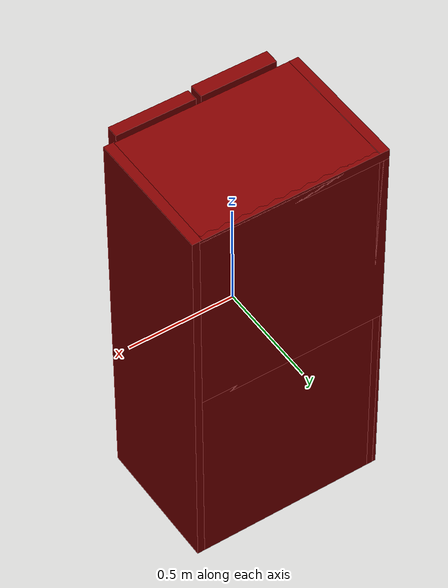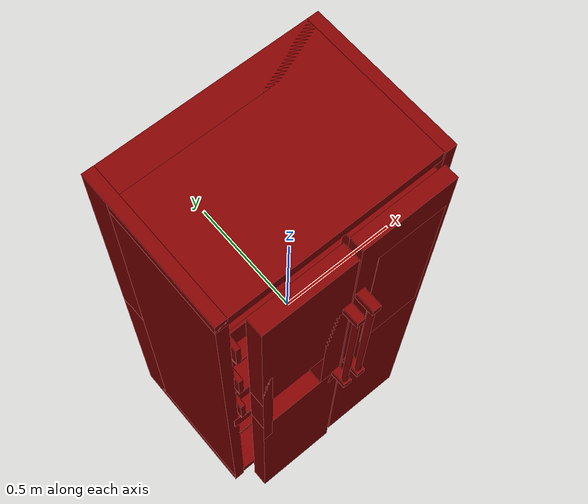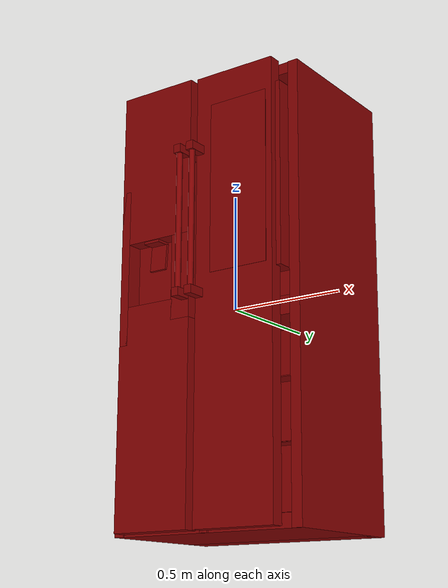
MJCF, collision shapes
<mujoco model="model">
  <compiler angle="radian"/>
  <asset>
    <mesh file="visuals/Body001.obj" name="Body001_vis"/>
    <mesh file="visuals/Body001_Clear.obj" name="Body001_Clear_vis"/>
    <mesh file="visuals/Door001.obj" name="Door001_vis"/>
    <mesh file="visuals/Door001_Clear.obj" name="Door001_Clear_vis"/>
    <mesh file="visuals/Door002.obj" name="Door002_vis"/>
    <mesh file="visuals/Door002_Clear.obj" name="Door002_Clear_vis"/>
    <mesh file="visuals/Drawer001.obj" name="Drawer001_vis"/>
    <mesh file="visuals/Drawer002.obj" name="Drawer002_vis"/>
    <mesh file="visuals/Drawer003.obj" name="Drawer003_vis"/>
    <mesh file="visuals/Drawer004.obj" name="Drawer004_vis"/>
    <mesh file="visuals/Drawer005.obj" name="Drawer005_vis"/>
    <mesh file="visuals/Drawer006.obj" name="Drawer006_vis"/>
    <texture file="visuals/T_BC001.png" name="Body001_material" type="2d"/>
    <material name="Body001_material" rgba="1 1 1 1.0" texture="Body001_material" shininess="0.4472135901451111" specular="0.3103448502657381"/>
    <texture file="visuals/T_BC001.png" name="Body001_Clear_material" type="2d"/>
    <material name="Body001_Clear_material" rgba="1 1 1 0.30000001192092896" texture="Body001_Clear_material" shininess="0.39411622285842896" specular="0.3103448502657381"/>
    <texture file="visuals/T_BC001.png" name="Door001_material" type="2d"/>
    <material name="Door001_material" rgba="1 1 1 1.0" texture="Door001_material" shininess="0.4472135901451111" specular="0.3103448502657381"/>
    <texture file="visuals/T_BC001.png" name="Door001_Clear_material" type="2d"/>
    <material name="Door001_Clear_material" rgba="1 1 1 0.30000001192092896" texture="Door001_Clear_material" shininess="0.39411622285842896" specular="0.3103448502657381"/>
    <texture file="visuals/T_BC001.png" name="Door002_material" type="2d"/>
    <material name="Door002_material" rgba="1 1 1 1.0" texture="Door002_material" shininess="0.4472135901451111" specular="0.3103448502657381"/>
    <texture file="visuals/T_BC001.png" name="Door002_Clear_material" type="2d"/>
    <material name="Door002_Clear_material" rgba="1 1 1 0.30000001192092896" texture="Door002_Clear_material" shininess="0.39411622285842896" specular="0.3103448502657381"/>
    <texture file="visuals/T_BC001.png" name="Drawer001_material" type="2d"/>
    <material name="Drawer001_material" rgba="1 1 1 1.0" texture="Drawer001_material" shininess="0.4472135901451111" specular="0.3103448502657381"/>
    <texture file="visuals/T_BC001.png" name="Drawer002_material" type="2d"/>
    <material name="Drawer002_material" rgba="1 1 1 1.0" texture="Drawer002_material" shininess="0.4472135901451111" specular="0.3103448502657381"/>
    <texture file="visuals/T_BC001.png" name="Drawer003_material" type="2d"/>
    <material name="Drawer003_material" rgba="1 1 1 1.0" texture="Drawer003_material" shininess="0.4472135901451111" specular="0.3103448502657381"/>
    <texture file="visuals/T_BC001.png" name="Drawer004_material" type="2d"/>
    <material name="Drawer004_material" rgba="1 1 1 1.0" texture="Drawer004_material" shininess="0.4472135901451111" specular="0.3103448502657381"/>
    <texture file="visuals/T_BC001.png" name="Drawer005_material" type="2d"/>
    <material name="Drawer005_material" rgba="1 1 1 1.0" texture="Drawer005_material" shininess="0.4472135901451111" specular="0.3103448502657381"/>
    <texture file="visuals/T_BC001.png" name="Drawer006_material" type="2d"/>
    <material name="Drawer006_material" rgba="1 1 1 1.0" texture="Drawer006_material" shininess="0.4472135901451111" specular="0.3103448502657381"/>
  </asset>
  <default>
    <default class="visual">
      <geom conaffinity="0" contype="0" group="1" type="mesh"/>
    </default>
    <default class="collision">
      <geom group="0" rgba="0.5 0 0 0.5"/>
    </default>
    <default class="spawn">
      <geom group="0" rgba="1 1 1 0.5" contype="0" conaffinity="0"/>
      <site group="0" rgba="1 1 1 0.5"/>
    </default>
    <default class="region">
      <geom group="1" conaffinity="0" contype="0" rgba="0 1 0 0"/>
    </default>
  </default>
  <worldbody>
    <body>
      <body name="object">
        <geom mesh="Body001_vis" type="mesh" solimp="0.998 0.998 0.001" solref="0.001 1" density="100" friction="0.95 0.3 0.1" class="visual" material="Body001_material"/>
        <geom class="collision" type="box" pos="-0.017130 0.349630 0.464063" size="0.4369490146636963 0.06190929189324379 0.47445324063301086" quat="1.0 0.0 0.0 0.0"/>
        <geom class="collision" type="box" pos="0.430972 0.099006 -0.000786" size="0.02313198335468769 0.3125327229499817 0.9393028020858765" quat="1.0 0.0 0.0 0.0"/>
        <geom class="collision" type="box" pos="-0.000038 0.099006 -0.515282" size="0.017909234389662743 0.3125327229499817 0.424807071685791" quat="1.0 0.0 0.0 0.0"/>
        <geom class="collision" type="box" pos="-0.431297 0.101194 -0.000274" size="0.022781522944569588 0.3103454113006592 0.9398152232170105" quat="1.0 0.0 0.0 0.0"/>
        <geom class="collision" type="box" pos="-0.017130 0.101194 0.915243" size="0.4369490146636963 0.3103454113006592 0.023273199796676636" quat="1.0 0.0 0.0 0.0"/>
        <geom class="collision" type="box" pos="-0.017130 0.349630 -0.466339" size="0.4369490146636963 0.06190929934382439 0.47375184297561646" quat="1.0 0.0 0.0 0.0"/>
        <geom class="collision" type="box" pos="0.009772 0.045408 -0.087877" size="0.4377967417240143 0.25801172852516174 0.037887949496507645" quat="1.0 0.0 0.0 0.0"/>
        <geom class="collision" type="box" pos="-0.000122 0.052226 -0.911006" size="0.45411217212677 0.25554609298706055 0.029084550216794014" quat="1.0 0.0 0.0 0.0"/>
        <geom class="collision" type="box" pos="0.000028 0.017619 -0.347102" size="0.41705259680747986 0.14877770841121674 0.0020509078167378902" quat="1.0 0.0 0.0 0.0"/>
        <geom class="collision" type="box" pos="0.000028 0.017434 -0.605191" size="0.41705259680747986 0.14877770841121674 0.0015092890243977308" quat="1.0 0.0 0.0 0.0"/>
        <body name="Body001_Clear">
          <geom mesh="Body001_Clear_vis" type="mesh" solimp="0.998 0.998 0.001" solref="0.001 1" density="100" friction="0.95 0.3 0.1" class="visual" material="Body001_Clear_material"/>
          <geom class="collision" type="box" pos="0.000028 0.101083 0.579529" size="0.41705259680747986 0.14877770841121674 0.002517866902053356" quat="1.0 0.0 0.0 0.0"/>
          <geom class="collision" type="box" pos="0.000028 0.101083 0.262901" size="0.41705259680747986 0.14877770841121674 0.0025178357027471066" quat="1.0 0.0 0.0 0.0"/>
        </body>
        <body name="Door001">
          <joint axis="0.0 0.0 -1.0" pos="-0.399623 -0.280654 0.002696" limited="true" name="Door001_joint" range="0.0 1.5707963267948966" type="hinge" damping="1" frictionloss="1" armature=".01" stiffness="0.05"/>
          <geom mesh="Door001_vis" type="mesh" solimp="0.998 0.998 0.001" solref="0.001 1" density="100" friction="0.95 0.3 0.1" class="visual" material="Door001_material"/>
          <geom class="collision" type="box" pos="-0.191754 -0.274096 0.600436" size="0.1787136346101761 0.034718483686447144 0.33652305603027344" quat="1.0 0.0 0.0 0.0"/>
          <geom class="collision" type="box" pos="-0.031341 -0.335910 0.607946" size="0.016964782029390335 0.03985905647277832 0.017887068912386894" quat="1.0 0.0 0.0 0.0"/>
          <geom class="collision" type="box" pos="-0.031341 -0.335910 -0.003951" size="0.016964782029390335 0.03985905647277832 0.017887068912386894" quat="1.0 0.0 0.0 0.0"/>
          <geom class="collision" type="cylinder" pos="-0.030737 -0.356870 0.303392" size="0.012455540709197521 0.2911377549171448" quat="1.0 0.0 0.0 0.0"/>
          <geom class="collision" type="box" pos="-0.191754 -0.274096 -0.471508" size="0.1787136346101761 0.034718479961156845 0.4623774290084839" quat="1.0 0.0 0.0 0.0"/>
          <geom class="collision" type="box" pos="-0.058113 -0.274096 0.241604" size="0.045072827488183975 0.034718479961156845 0.33652305603027344" quat="1.0 0.0 0.0 0.0"/>
          <geom class="collision" type="box" pos="-0.350156 -0.274096 0.165164" size="0.020311063155531883 0.034718483686447144 0.33652305603027344" quat="1.0 0.0 0.0 0.0"/>
          <geom class="collision" type="box" pos="-0.217869 -0.232546 0.134988" size="0.12115059047937393 0.001516168937087059 0.1377476155757904" quat="1.0 0.0 0.0 0.0"/>
          <geom class="collision" type="box" pos="-0.214877 -0.250477 0.199919" size="0.03956760838627815 0.005637699272483587 0.05584569647908211" quat="0.9992120862007141 -0.03968845307826996 -0.0 0.0"/>
          <geom class="collision" type="box" pos="-0.216220 -0.270824 0.292688" size="0.037996724247932434 0.03144644945859909 0.03941567987203598" quat="1.0 0.0 0.0 0.0"/>
          <body name="Door001_Clear">
            <geom mesh="Door001_Clear_vis" type="mesh" solimp="0.998 0.998 0.001" solref="0.001 1" density="100" friction="0.95 0.3 0.1" class="visual" material="Door001_Clear_material"/>
            <geom class="collision" type="box" pos="-0.058919 -0.199460 0.649756" size="0.009434860199689865 0.031130580231547356 0.062306784093379974" quat="1.0 0.0 0.0 0.0"/>
            <geom class="collision" type="box" pos="-0.231812 -0.172960 0.649756" size="0.1656641811132431 0.0046318164095282555 0.062306854873895645" quat="1.0 0.0 0.0 0.0"/>
            <geom class="collision" type="box" pos="-0.235300 -0.199460 0.593065" size="0.17214933037757874 0.03113064356148243 0.005618210881948471" quat="1.0 0.0 0.0 0.0"/>
            <geom class="collision" type="box" pos="-0.398014 -0.199460 0.649756" size="0.009434860199689865 0.031130677089095116 0.06230698898434639" quat="1.0 0.0 0.0 0.0"/>
            <geom class="collision" type="box" pos="-0.058919 -0.199460 0.063401" size="0.009434860199689865 0.031130708754062653 0.06230705603957176" quat="1.0 0.0 0.0 0.0"/>
            <geom class="collision" type="box" pos="-0.398014 -0.199460 0.063401" size="0.009434860199689865 0.03113074041903019 0.062307123094797134" quat="1.0 0.0 0.0 0.0"/>
            <geom class="collision" type="box" pos="-0.235300 -0.199460 0.006711" size="0.17214933037757874 0.031130773946642876 0.0056182448752224445" quat="1.0 0.0 0.0 0.0"/>
            <geom class="collision" type="box" pos="-0.231812 -0.172960 0.063401" size="0.1656641811132431 0.0046318406239151955 0.06230726093053818" quat="1.0 0.0 0.0 0.0"/>
            <geom class="collision" type="box" pos="-0.231812 -0.141335 0.347595" size="0.1656641811132431 0.004631844814866781 0.06230732798576355" quat="1.0 0.0 0.0 0.0"/>
            <geom class="collision" type="box" pos="-0.235300 -0.183647 0.290905" size="0.17214933037757874 0.04694264754652977 0.005618270020931959" quat="1.0 0.0 0.0 0.0"/>
            <geom class="collision" type="box" pos="-0.398014 -0.183647 0.347595" size="0.009434860199689865 0.046942710876464844 0.062307462096214294" quat="1.0 0.0 0.0 0.0"/>
            <geom class="collision" type="box" pos="-0.058919 -0.183647 0.347595" size="0.009434860199689865 0.046942777931690216 0.06230752915143967" quat="1.0 0.0 0.0 0.0"/>
          </body>
        </body>
        <body name="Door002">
          <joint axis="0.0 0.0 1.0" pos="0.404048 -0.273538 0.002697" limited="true" name="Door002_joint" range="0.0 1.5707963267948966" type="hinge" damping="1" frictionloss="1" armature=".01" stiffness="0.05"/>
          <geom mesh="Door002_vis" type="mesh" solimp="0.998 0.998 0.001" solref="0.001 1" density="100" friction="0.95 0.3 0.1" class="visual" material="Door002_material"/>
          <geom class="collision" type="box" pos="0.195920 -0.267068 0.001537" size="0.18522392213344574 0.0282099898904562 0.9354221820831299" quat="1.0 0.0 0.0 0.0"/>
          <geom class="collision" type="cylinder" pos="0.032792 -0.356870 0.303392" size="0.012455540709197521 0.2911377549171448" quat="1.0 0.0 0.0 0.0"/>
          <geom class="collision" type="box" pos="0.032188 -0.335910 -0.003951" size="0.016964782029390335 0.03985905647277832 0.017887068912386894" quat="1.0 0.0 0.0 0.0"/>
          <geom class="collision" type="box" pos="0.032188 -0.335910 0.607946" size="0.016964782029390335 0.03985905647277832 0.017887068912386894" quat="1.0 0.0 0.0 0.0"/>
          <body name="Door002_Clear">
            <geom mesh="Door002_Clear_vis" type="mesh" solimp="0.998 0.998 0.001" solref="0.001 1" density="100" friction="0.95 0.3 0.1" class="visual" material="Door002_Clear_material"/>
            <geom class="collision" type="box" pos="0.220689 -0.299793 0.435757" size="0.135502889752388 0.0006363830179907382 0.3621423840522766" quat="1.0 0.0 0.0 0.0"/>
            <geom class="collision" type="box" pos="0.224648 -0.222197 0.449024" size="0.17789173126220703 0.04479290544986725 0.3880345821380615" quat="1.0 0.0 0.0 0.0"/>
          </body>
        </body>
        <body name="Drawer001">
          <joint axis="0.0 -1.0 0.0" pos="-0.173584 0.044440 -0.248420" limited="true" name="Drawer001_joint" range="0.0 0.25" type="slide" damping="1" frictionloss="1" armature=".01" stiffness="0.05"/>
          <geom mesh="Drawer001_vis" type="mesh" solimp="0.998 0.998 0.001" solref="0.001 1" density="100" friction="0.95 0.3 0.1" class="visual" material="Drawer001_material"/>
          <geom class="collision" type="box" pos="-0.174837 -0.074686 -0.246892" size="0.14488805830478668 0.006070493720471859 0.09650611877441406" quat="0.9996366500854492 0.026955198496580124 5.9852564008489315e-18 -4.577735674132309e-25"/>
          <geom class="collision" type="box" pos="-0.174837 0.163262 -0.246892" size="0.14488805830478668 0.006070611998438835 0.09650441259145737" quat="0.99958735704422 -0.028725145384669304 -6.378271002978495e-18 3.0940773422059995e-24"/>
          <geom class="collision" type="box" pos="-0.032272 0.041760 -0.246892" size="0.0029459791257977486 0.11905058473348618 0.09651876240968704" quat="1.0 0.0 0.0 0.0"/>
          <geom class="collision" type="box" pos="-0.316527 0.041760 -0.246892" size="0.0029459791257977486 0.11905043572187424 0.09651876240968704" quat="1.0 0.0 0.0 0.0"/>
          <geom class="collision" type="box" pos="-0.174520 0.037618 -0.338501" size="0.14169399440288544 0.11490866541862488 0.004909437615424395" quat="1.0 0.0 0.0 0.0"/>
        </body>
        <body name="Drawer002">
          <joint axis="0.0 -1.0 0.0" pos="-0.173584 0.044440 -0.480772" limited="true" name="Drawer002_joint" range="0.0 0.25" type="slide" damping="1" frictionloss="1" armature=".01" stiffness="0.05"/>
          <geom mesh="Drawer002_vis" type="mesh" solimp="0.998 0.998 0.001" solref="0.001 1" density="100" friction="0.95 0.3 0.1" class="visual" material="Drawer002_material"/>
          <geom class="collision" type="box" pos="-0.173869 -0.074686 -0.481447" size="0.14488805830478668 0.007330565247684717 0.12097813934087753" quat="0.9996366500854492 0.026955198496580124 5.9852564008489315e-18 -4.577735674132309e-25"/>
          <geom class="collision" type="box" pos="-0.173552 0.042389 -0.597567" size="0.14169399440288544 0.11967872083187103 0.004909432027488947" quat="1.0 0.0 0.0 0.0"/>
          <geom class="collision" type="box" pos="-0.315558 0.042389 -0.481447" size="0.0029459791257977486 0.1196785643696785 0.12102960050106049" quat="1.0 0.0 0.0 0.0"/>
          <geom class="collision" type="box" pos="-0.031303 0.042389 -0.481447" size="0.0029459791257977486 0.11967840790748596 0.12102960050106049" quat="1.0 0.0 0.0 0.0"/>
          <geom class="collision" type="box" pos="-0.173869 0.161955 -0.480754" size="0.14488805830478668 0.006070611998438835 0.12035737931728363" quat="0.99958735704422 -0.028725145384669304 -6.378271002978495e-18 3.0940773422059995e-24"/>
        </body>
        <body name="Drawer003">
          <joint axis="0.0 -1.0 0.0" pos="-0.173584 0.044440 -0.745233" limited="true" name="Drawer003_joint" range="0.0 0.25" type="slide" damping="1" frictionloss="1" armature=".01" stiffness="0.05"/>
          <geom mesh="Drawer003_vis" type="mesh" solimp="0.998 0.998 0.001" solref="0.001 1" density="100" friction="0.95 0.3 0.1" class="visual" material="Drawer003_material"/>
          <geom class="collision" type="box" pos="-0.173869 0.161368 -0.743355" size="0.14488805830478668 0.006070611998438835 0.1310756802558899" quat="0.99958735704422 -0.028725145384669304 -6.378271002978495e-18 3.0940773422059995e-24"/>
          <geom class="collision" type="box" pos="-0.031303 0.042389 -0.744152" size="0.0029459791257977486 0.11967825889587402 0.13183438777923584" quat="1.0 0.0 0.0 0.0"/>
          <geom class="collision" type="box" pos="-0.315558 0.042389 -0.744152" size="0.0029459791257977486 0.11967810243368149 0.13183438777923584" quat="1.0 0.0 0.0 0.0"/>
          <geom class="collision" type="box" pos="-0.173552 0.042389 -0.871077" size="0.14169399440288544 0.11967795342206955 0.00490943156182766" quat="1.0 0.0 0.0 0.0"/>
          <geom class="collision" type="box" pos="-0.173869 -0.074686 -0.744152" size="0.14488805830478668 0.007886026054620743 0.13176581263542175" quat="0.9996366500854492 0.026955198496580124 5.9852564008489315e-18 -4.577735674132309e-25"/>
        </body>
        <body name="Drawer004">
          <joint axis="0.0 -1.0 0.0" pos="0.180369 0.044443 -0.248422" limited="true" name="Drawer004_joint" range="0.0 0.25" type="slide" damping="1" frictionloss="1" armature=".01" stiffness="0.05"/>
          <geom mesh="Drawer004_vis" type="mesh" solimp="0.998 0.998 0.001" solref="0.001 1" density="100" friction="0.95 0.3 0.1" class="visual" material="Drawer004_material"/>
          <geom class="collision" type="box" pos="0.181222 -0.074686 -0.246892" size="0.1578999161720276 0.006070493720471859 0.09650611877441406" quat="0.9996366500854492 0.026955198496580124 5.9852564008489315e-18 -4.577735674132309e-25"/>
          <geom class="collision" type="box" pos="0.181539 0.037618 -0.338501" size="0.15470585227012634 0.11490850895643234 0.004909437615424395" quat="1.0 0.0 0.0 0.0"/>
          <geom class="collision" type="box" pos="0.026521 0.041760 -0.246892" size="0.0029459791257977486 0.11904997378587723 0.09651876240968704" quat="1.0 0.0 0.0 0.0"/>
          <geom class="collision" type="box" pos="0.336800 0.041760 -0.246892" size="0.0029459793586283922 0.11904981732368469 0.09651876240968704" quat="1.0 0.0 0.0 0.0"/>
          <geom class="collision" type="box" pos="0.181222 0.163262 -0.246892" size="0.1578999161720276 0.006070611998438835 0.09650441259145737" quat="0.99958735704422 -0.028725145384669304 -6.378271002978495e-18 3.0940773422059995e-24"/>
        </body>
        <body name="Drawer005">
          <joint axis="0.0 -1.0 0.0" pos="0.180369 0.044443 -0.480774" limited="true" name="Drawer005_joint" range="0.0 0.25" type="slide" damping="1" frictionloss="1" armature=".01" stiffness="0.05"/>
          <geom mesh="Drawer005_vis" type="mesh" solimp="0.998 0.998 0.001" solref="0.001 1" density="100" friction="0.95 0.3 0.1" class="visual" material="Drawer005_material"/>
          <geom class="collision" type="box" pos="0.181222 0.161955 -0.480754" size="0.1578999161720276 0.006070611998438835 0.12035737931728363" quat="0.99958735704422 -0.028725145384669304 -6.378271002978495e-18 3.0940773422059995e-24"/>
          <geom class="collision" type="box" pos="0.336800 0.042389 -0.481447" size="0.0029459793586283922 0.11967918276786804 0.12102960050106049" quat="1.0 0.0 0.0 0.0"/>
          <geom class="collision" type="box" pos="0.026521 0.042389 -0.481447" size="0.0029459791257977486 0.1196790263056755 0.12102960050106049" quat="1.0 0.0 0.0 0.0"/>
          <geom class="collision" type="box" pos="0.181539 0.042389 -0.597567" size="0.15470585227012634 0.11967886984348297 0.004909432027488947" quat="1.0 0.0 0.0 0.0"/>
          <geom class="collision" type="box" pos="0.181222 -0.074686 -0.481447" size="0.1578999161720276 0.007330565247684717 0.12097813934087753" quat="0.9996366500854492 0.026955198496580124 5.9852564008489315e-18 -4.577735674132309e-25"/>
        </body>
        <body name="Drawer006">
          <joint axis="0.0 -1.0 0.0" pos="0.180369 0.044443 -0.745235" limited="true" name="Drawer006_joint" range="0.0 0.25" type="slide" damping="1" frictionloss="1" armature=".01" stiffness="0.05"/>
          <geom mesh="Drawer006_vis" type="mesh" solimp="0.998 0.998 0.001" solref="0.001 1" density="100" friction="0.95 0.3 0.1" class="visual" material="Drawer006_material"/>
          <geom class="collision" type="box" pos="0.182191 -0.074686 -0.744152" size="0.1578999161720276 0.007886026054620743 0.13176581263542175" quat="0.9996366500854492 0.026955198496580124 5.9852564008489315e-18 -4.577735674132309e-25"/>
          <geom class="collision" type="box" pos="0.182508 0.042389 -0.871077" size="0.15470585227012634 0.11967779695987701 0.00490943156182766" quat="1.0 0.0 0.0 0.0"/>
          <geom class="collision" type="box" pos="0.027490 0.042389 -0.744152" size="0.0029459791257977486 0.11967764049768448 0.13183438777923584" quat="1.0 0.0 0.0 0.0"/>
          <geom class="collision" type="box" pos="0.337768 0.042389 -0.744152" size="0.0029459793586283922 0.11967749148607254 0.13183438777923584" quat="1.0 0.0 0.0 0.0"/>
          <geom class="collision" type="box" pos="0.182191 0.161368 -0.743355" size="0.1578999161720276 0.006070611998438835 0.1310756802558899" quat="0.99958735704422 -0.028725145384669304 -6.378271002978495e-18 3.0940773422059995e-24"/>
        </body>
        <geom class="region" name="reg_main" type="box" pos="0.0 0.044513 0.0" size="0.454788 0.37012999999999996 0.940325"/>
      </body>
    </body>
  </worldbody>
  <actuator>
    <motor name="Door001_joint_actuator" joint="Door001_joint" gear="50"/>
    <motor name="Door002_joint_actuator" joint="Door002_joint" gear="50"/>
    <motor name="Drawer001_joint_actuator" joint="Drawer001_joint" gear="50"/>
    <motor name="Drawer002_joint_actuator" joint="Drawer002_joint" gear="50"/>
    <motor name="Drawer003_joint_actuator" joint="Drawer003_joint" gear="50"/>
    <motor name="Drawer004_joint_actuator" joint="Drawer004_joint" gear="50"/>
    <motor name="Drawer005_joint_actuator" joint="Drawer005_joint" gear="50"/>
    <motor name="Drawer006_joint_actuator" joint="Drawer006_joint" gear="50"/>
  </actuator>
</mujoco>
